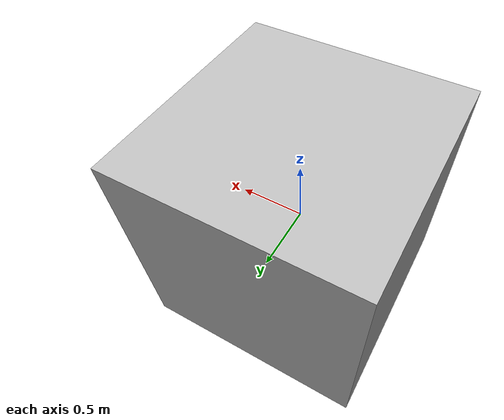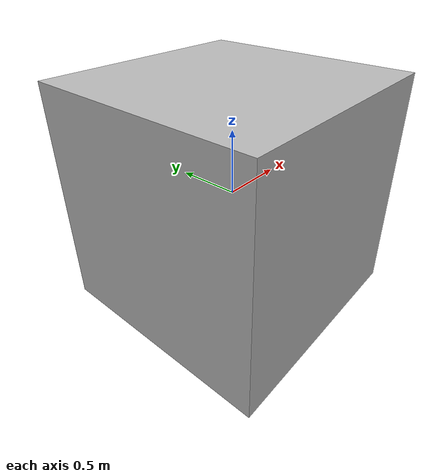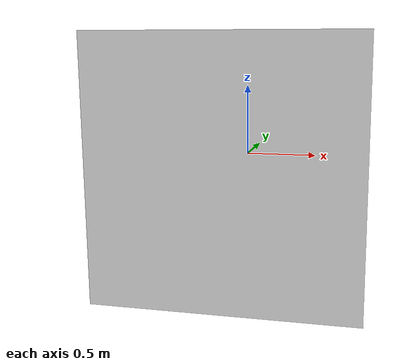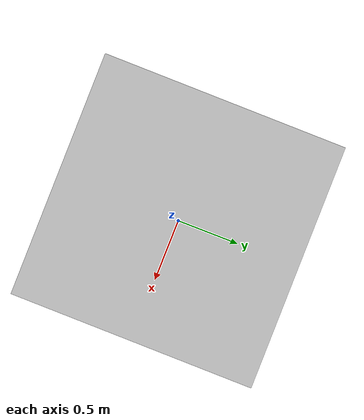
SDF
<?xml version="1.0" ?>
<sdf version="1.6">
  <model name="bicycle">
    <static>true</static>
    <link name="box">
      <pose>0 0 0 0 0 0</pose>
      <collision name="collision">
        <geometry>
          <box>
            <size>1.75 1.75 1.75</size>
          </box>
        </geometry>
      </collision>
      <visual name="visual">
        <geometry>
          <box>
            <size>1.75 1.75 1.75</size>
          </box>
        </geometry>
        <material>
          <script>
            <uri>model://sala404_circuito/objeto/bicycle/materials/scripts</uri>
            <uri>model://sala404_circuito/objeto/bicycle/materials/textures</uri>
            <name>bicycle</name>
          </script>
        </material>
      </visual>
    </link>
  </model>
</sdf>
